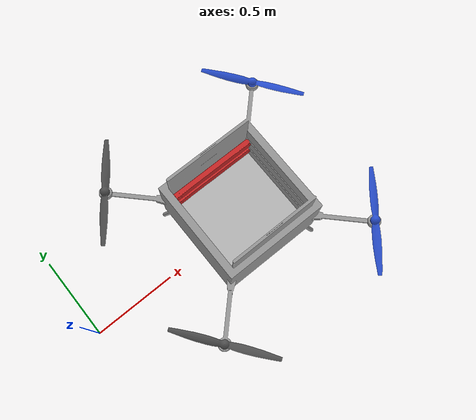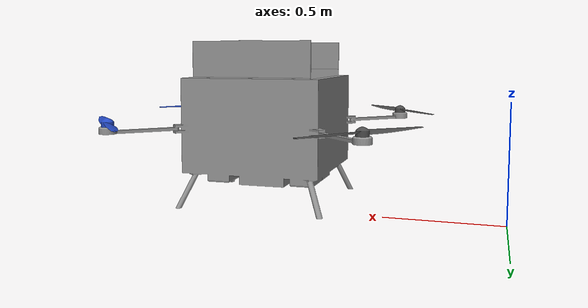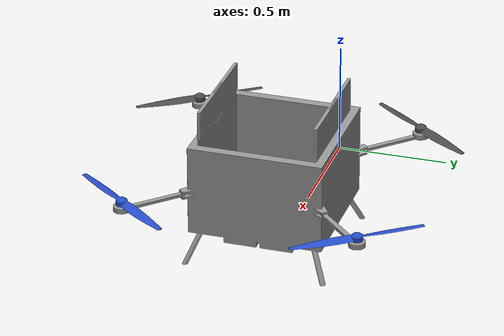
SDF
<sdf version='1.5'>
  <model name='zimuji_small_stable'>
  <pose>1 0 0.2 0 0 0</pose>
  <static>true</static>
    <link name='base_link'>
      <pose>0 0 0 0 -0 0</pose>
      <inertial>
        <pose>0 0 0 0 -0 0</pose>
        <mass>1.97588</mass>
        <inertia>
          <ixx>0.214177</ixx>
          <ixy>0.000153787</ixy>
          <ixz>0.000181295</ixz>
          <iyy>0.224926</iyy>
          <iyz>-0.000400008</iyz>
          <izz>0.306691</izz>
        </inertia>
      </inertial>
      <collision name='base_link_collision'>
        <pose>0 0 0 0 -0 0</pose>
        <geometry>
          <mesh>
            <scale>1 1 1</scale>
            <uri>model://zimuji_small_stable/meshes/base_link.STL</uri>
          </mesh>
        </geometry>
      </collision>
      <collision name='base_link_fixed_joint_lump__juanlian1_link_collision_1'>
        <pose>0 -0.028765 0.1075 0 -0 0</pose>
        <geometry>
          <mesh>
            <scale>1 1 1</scale>
            <uri>model://zimuji_small_stable/meshes/juanlian1_link.STL</uri>
          </mesh>
        </geometry>
      </collision>
      <collision name='base_link_fixed_joint_lump__juanlian2_link_collision_2'>
        <pose>0.00019 0.23079 0.20125 0 -0 0</pose>
        <geometry>
          <mesh>
            <scale>1 1 1</scale>
            <uri>model://zimuji_small_stable/meshes/juanlian2_link.STL</uri>
          </mesh>
        </geometry>
      </collision>
      <collision name='base_link_fixed_joint_lump__juanlian3_link_collision_3'>
        <pose>0.00019 0.23079 0.296875 0 -0 0</pose>
        <geometry>
          <mesh>
            <scale>1 1 1</scale>
            <uri>model://zimuji_small_stable/meshes/juanlian3_link.STL</uri>
          </mesh>
        </geometry>
      </collision>
      <visual name='base_link_visual'>
        <pose>0 0 0 0 -0 0</pose>
        <geometry>
          <mesh>
            <scale>1 1 1</scale>
            <uri>model://zimuji_small_stable/meshes/base_link.STL</uri>
          </mesh>
        </geometry>
	<material>
          <script>
            <name>Gazebo/Grey</name>
            <uri>file://media/materials/scripts/gazebo.material</uri>
          </script>
        </material>
      </visual>
      <visual name='base_link_fixed_joint_lump__juanlian1_link_visual_1'>
        <pose>0 -0.028765 0.1075 0 -0 0</pose>
        <geometry>
          <mesh>
            <scale>1 1 1</scale>
            <uri>model://zimuji_small_stable/meshes/juanlian1_link.STL</uri>
          </mesh>
        </geometry>
      </visual>
      <visual name='base_link_fixed_joint_lump__juanlian2_link_visual_2'>
        <pose>0.00019 0.23079 0.20125 0 -0 0</pose>
        <geometry>
          <mesh>
            <scale>1 1 1</scale>
            <uri>model://zimuji_small_stable/meshes/juanlian2_link.STL</uri>
          </mesh>
        </geometry>
	<material>
          <script>
            <name>Gazebo/RedGlow</name>
            <uri>file://media/materials/scripts/gazebo.material</uri>
          </script>
        </material>
      </visual>
      <visual name='base_link_fixed_joint_lump__juanlian3_link_visual_3'>
        <pose>0.00019 0.23079 0.296875 0 -0 0</pose>
        <geometry>
          <mesh>
            <scale>1 1 1</scale>
            <uri>model://zimuji_small_stable/meshes/juanlian3_link.STL</uri>
          </mesh>
        </geometry>
	<material>
          <script>
            <name>Gazebo/RedGlow</name>
            <uri>file://media/materials/scripts/gazebo.material</uri>
          </script>
        </material>
      </visual>
      <collision name='mark_collision'>
	<pose>0 0 0.1075 0 0 0</pose>
        <geometry>
                <box>
                  <size>0.5 0.5 .01</size>
                </box>
        </geometry>
	<surface>
          <contact>
            <ode/>
          </contact>
          <friction>
            <ode/>
          </friction>
        </surface>
      </collision>
      <visual name='mark_visual'>
	<pose>0 0 0.1075 0 0 0</pose>
        <geometry>
                <box>
                  <size>0.5 0.5 .01</size>
                </box>
        </geometry>
        <material>
          <script>
            <uri>model://zimuji_small_stable/materials/scripts</uri>
            <uri>model://zimuji_small_stable/materials/textures</uri>
            <name>Mark/Diffuse</name>
          </script>
        </material>
      </visual>
    </link>

    <link name='rotor_0'>
      <pose>0.502132 -0.499648 0.233568 0 -0 0</pose>
      <inertial>
        <pose>0 0 0 0 -0 0</pose>
        <mass>0.005</mass>
        <inertia>
          <ixx>9.75e-07</ixx>
          <ixy>0</ixy>
          <ixz>0</ixz>
          <iyy>0.000273104</iyy>
          <iyz>0</iyz>
          <izz>0.000274004</izz>
        </inertia>
      </inertial>
      <collision name='rotor_0_collision'>
        <pose>0 0 0 0 -0 0</pose>
        <geometry>
          <mesh>
            <scale>1 1 1</scale>
            <uri>model://zimuji_small_stable/meshes/rotor2_link.STL</uri>
          </mesh>
        </geometry>
        <surface>
          <contact>
            <ode/>
          </contact>
          <friction>
            <ode/>
          </friction>
        </surface>
      </collision>
      <visual name='rotor_0_visual'>
        <pose>0 0 0 0 -0 1.5705648</pose>
        <geometry>
          <mesh>
            <scale>1 1 1</scale>
            <uri>model://zimuji_small_stable/meshes/rotor2_link.STL</uri>
          </mesh>
        </geometry>
	<material>
          <script>
            <name>Gazebo/Blue</name>
            <uri>file://media/materials/scripts/gazebo.material</uri>
          </script>
        </material>
      </visual>
      <gravity>1</gravity>
      <velocity_decay/>
    </link>
    <joint name='rotor_0_joint' type='revolute'>
      <child>rotor_0</child>
      <parent>base_link</parent>
      <axis>
        <xyz>0 0 1</xyz>
        <limit>
          <lower>-1e+16</lower>
          <upper>1e+16</upper>
        </limit>
        <dynamics>
          <spring_reference>0</spring_reference>
          <spring_stiffness>0</spring_stiffness>
        </dynamics>
        <use_parent_model_frame>1</use_parent_model_frame>
      </axis>
    </joint>
    <link name='rotor_1'>
      <pose>-0.502132 0.504616 0.233568 0 -0 0</pose>
      <inertial>
        <pose>0 0 0 0 -0 0</pose>
        <mass>0.005</mass>
        <inertia>
          <ixx>9.75e-07</ixx>
          <ixy>0</ixy>
          <ixz>0</ixz>
          <iyy>0.000273104</iyy>
          <iyz>0</iyz>
          <izz>0.000274004</izz>
        </inertia>
      </inertial>
      <collision name='rotor_1_collision'>
        <pose>0 0 0 0 -0 0</pose>
        <geometry>
          <mesh>
            <scale>1 1 1</scale>
            <uri>model://zimuji_small_stable/meshes/rotor2_link.STL</uri>
          </mesh>
        </geometry>
        <surface>
          <contact>
            <ode/>
          </contact>
          <friction>
            <ode/>
          </friction>
        </surface>
      </collision>
      <visual name='rotor_1_visual'>
        <pose>0 0 0 0 -0 1.5705648</pose>
        <geometry>
          <mesh>
            <scale>1 1 1</scale>
            <uri>model://zimuji_small_stable/meshes/rotor2_link.STL</uri>
          </mesh>
        </geometry>
        <material>
          <script>
            <name>Gazebo/DarkGrey</name>
            <uri>file://media/materials/scripts/gazebo.material</uri>
          </script>
        </material>
      </visual>
      <gravity>1</gravity>
      <velocity_decay/>
    </link>
    <joint name='rotor_1_joint' type='revolute'>
      <child>rotor_1</child>
      <parent>base_link</parent>
      <axis>
        <xyz>0 0 1</xyz>
        <limit>
          <lower>-1e+16</lower>
          <upper>1e+16</upper>
        </limit>
        <dynamics>
          <spring_reference>0</spring_reference>
          <spring_stiffness>0</spring_stiffness>
        </dynamics>
        <use_parent_model_frame>1</use_parent_model_frame>
      </axis>
    </joint>
    <link name='rotor_2'>
      <pose>0.502132 0.504616 0.233568 0 -0 0</pose>
      <inertial>
        <pose>0 0 0 0 -0 0</pose>
        <mass>0.005</mass>
        <inertia>
          <ixx>9.75e-07</ixx>
          <ixy>0</ixy>
          <ixz>0</ixz>
          <iyy>0.000273104</iyy>
          <iyz>0</iyz>
          <izz>0.000274004</izz>
        </inertia>
      </inertial>
      <collision name='rotor_2_collision'>
        <pose>0 0 0 0 -0 0</pose>
        <geometry>
          <mesh>
            <scale>1 1 1</scale>
            <uri>model://zimuji_small_stable/meshes/rotor1_link.STL</uri>
          </mesh>
        </geometry>
        <surface>
          <contact>
            <ode/>
          </contact>
          <friction>
            <ode/>
          </friction>
        </surface>
      </collision>
      <visual name='rotor_2_visual'>
        <pose>0 0 0 0 -0 1.5705648</pose>
        <geometry>
          <mesh>
            <scale>1 1 1</scale>
            <uri>model://zimuji_small_stable/meshes/rotor1_link.STL</uri>
          </mesh>
        </geometry>
        <material>
          <script>
            <name>Gazebo/Blue</name>
            <uri>file://media/materials/scripts/gazebo.material</uri>
          </script>
        </material>
      </visual>
      <gravity>1</gravity>
      <velocity_decay/>
    </link>
    <joint name='rotor_2_joint' type='revolute'>
      <child>rotor_2</child>
      <parent>base_link</parent>
      <axis>
        <xyz>0 -0 1</xyz>
        <limit>
          <lower>-1e+16</lower>
          <upper>1e+16</upper>
        </limit>
        <dynamics>
          <spring_reference>0</spring_reference>
          <spring_stiffness>0</spring_stiffness>
        </dynamics>
        <use_parent_model_frame>1</use_parent_model_frame>
      </axis>
    </joint>
    <link name='rotor_3'>
      <pose>-0.502132 -0.499647 0.233568 0 -0 0</pose>
      <inertial>
        <pose>0 0 0 0 -0 0</pose>
        <mass>0.005</mass>
        <inertia>
          <ixx>9.75e-07</ixx>
          <ixy>0</ixy>
          <ixz>0</ixz>
          <iyy>0.000273104</iyy>
          <iyz>0</iyz>
          <izz>0.000274004</izz>
        </inertia>
      </inertial>
      <collision name='rotor_3_collision'>
        <pose>0 0 0 0 -0 0</pose>
        <geometry>
          <mesh>
            <scale>1 1 1</scale>
            <uri>model://zimuji_small_stable/meshes/rotor1_link.STL</uri>
          </mesh>
        </geometry>
        <surface>
          <contact>
            <ode/>
          </contact>
          <friction>
            <ode/>
          </friction>
        </surface>
      </collision>
      <visual name='rotor_3_visual'>
        <pose>0 0 0 0 0 1.5705648</pose>
        <geometry>
          <mesh>
            <scale>1 1 1</scale>
            <uri>model://zimuji_small_stable/meshes/rotor1_link.STL</uri>
          </mesh>
        </geometry>
        <material>
          <script>
            <name>Gazebo/DarkGrey</name>
            <uri>file://media/materials/scripts/gazebo.material</uri>
          </script>
        </material>
      </visual>
      <gravity>1</gravity>
      <velocity_decay/>
    </link>
    <joint name='rotor_3_joint' type='revolute'>
      <child>rotor_3</child>
      <parent>base_link</parent>
      <axis>
        <xyz>0 0 1</xyz>
        <limit>
          <lower>-1e+16</lower>
          <upper>1e+16</upper>
        </limit>
        <dynamics>
          <spring_reference>0</spring_reference>
          <spring_stiffness>0</spring_stiffness>
        </dynamics>
        <use_parent_model_frame>1</use_parent_model_frame>
      </axis>
    </joint>
  </model>
</sdf>
